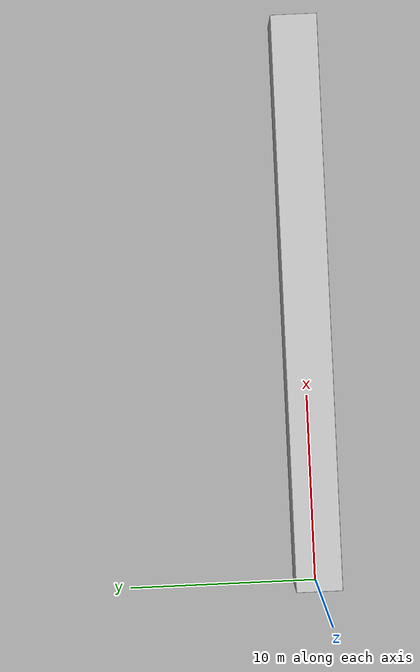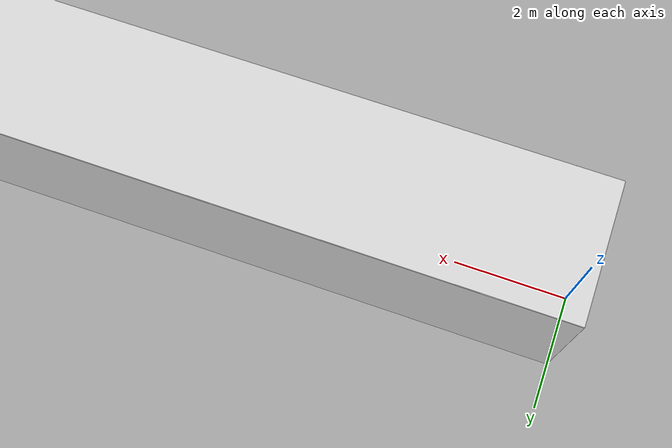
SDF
<?xml version="1.0" ?>
<sdf version="1.6">
  <world name="corridor">

    <!-- Deterministic fizik -->
    <physics type="ode">
      <real_time_update_rate>1000</real_time_update_rate>
      <max_step_size>0.001</max_step_size>
      <real_time_factor>1</real_time_factor>
      <ode>
        <solver>
          <type>quick</type>
          <iters>150</iters>
          <precon_iters>0</precon_iters>
          <sor>1.4</sor>
        </solver>
        <constraints>
          <cfm>1e-5</cfm>
          <erp>0.2</erp>
          <contact_max_correcting_vel>2000</contact_max_correcting_vel>
          <contact_surface_layer>0.01</contact_surface_layer>
        </constraints>
      </ode>
    </physics>

    <!-- Yerçekimi -->
    <gravity>0 0 -9.81</gravity>

    <!-- Arka plan rengi (gri ton) -->
    <scene>
      <ambient>0.35 0.35 0.35 1</ambient>
      <background>0.4 0.4 0.4 1</background>
      <shadows>false</shadows>
      <sky>
        <clouds>
          <speed>0</speed>
        </clouds>
      </sky>
    </scene>

    <!-- GUI kamera -->
    <gui fullscreen="0">
      <camera name="user_camera">
        <!-- Koridor girişinde, göz hizasında, içeri bakıyor -->
        <pose>-1 0 1.6 0 0.05 0</pose>
        <view_controller>orbit</view_controller>
      </camera>
    </gui>

    <!-- ===================== KORIDOR GEOMETRİSİ ===================== -->
    <!-- 30m uzun (+x), 2.4m geniş (y), 2.8m yüksek (z) -->
    <!-- Merkez: x=15, y=0, z=1.4 -->

    <!-- ZEMİN -->
    <model name="floor">
      <static>true</static>
      <pose>15 0 0 0 0 0</pose>
      <link name="link">
        <collision name="col">
          <geometry><box><size>30 2.4 0.02</size></box></geometry>
        </collision>
        <visual name="vis">
          <geometry><box><size>30 2.4 0.02</size></box></geometry>
          <material>
            <ambient>0.45 0.45 0.45 1</ambient>
            <diffuse>0.45 0.45 0.45 1</diffuse>
            <specular>0.05 0.05 0.05 1</specular>
          </material>
        </visual>
      </link>
    </model>

    <!-- TAVAN -->
    <model name="ceiling">
      <static>true</static>
      <pose>15 0 2.8 0 0 0</pose>
      <link name="link">
        <collision name="col">
          <geometry><box><size>30 2.4 0.02</size></box></geometry>
        </collision>
        <visual name="vis">
          <geometry><box><size>30 2.4 0.02</size></box></geometry>
          <material>
            <ambient>0.85 0.85 0.85 1</ambient>
            <diffuse>0.85 0.85 0.85 1</diffuse>
          </material>
        </visual>
      </link>
    </model>

    <!-- SOL DUVAR (y = +1.2) -->
    <model name="wall_left">
      <static>true</static>
      <pose>15 1.2 1.4 0 0 0</pose>
      <link name="link">
        <collision name="col">
          <geometry><box><size>30 0.02 2.8</size></box></geometry>
        </collision>
        <visual name="vis">
          <geometry><box><size>30 0.02 2.8</size></box></geometry>
          <material>
            <ambient>0.80 0.80 0.80 1</ambient>
            <diffuse>0.80 0.80 0.80 1</diffuse>
          </material>
        </visual>
      </link>
    </model>

    <!-- SAĞ DUVAR (y = -1.2) -->
    <model name="wall_right">
      <static>true</static>
      <pose>15 -1.2 1.4 0 0 0</pose>
      <link name="link">
        <collision name="col">
          <geometry><box><size>30 0.02 2.8</size></box></geometry>
        </collision>
        <visual name="vis">
          <geometry><box><size>30 0.02 2.8</size></box></geometry>
          <material>
            <ambient>0.80 0.80 0.80 1</ambient>
            <diffuse>0.80 0.80 0.80 1</diffuse>
          </material>
        </visual>
      </link>
    </model>

    <!-- ARKA DUVAR (x = 0) -->
    <model name="wall_back">
      <static>true</static>
      <pose>0 0 1.4 0 0 0</pose>
      <link name="link">
        <collision name="col">
          <geometry><box><size>0.02 2.4 2.8</size></box></geometry>
        </collision>
        <visual name="vis">
          <geometry><box><size>0.02 2.4 2.8</size></box></geometry>
          <material>
            <ambient>0.80 0.80 0.80 1</ambient>
            <diffuse>0.80 0.80 0.80 1</diffuse>
          </material>
        </visual>
      </link>
    </model>

    <!-- ÖN DUVAR (x = 30) -->
    <model name="wall_front">
      <static>true</static>
      <pose>30 0 1.4 0 0 0</pose>
      <link name="link">
        <collision name="col">
          <geometry><box><size>0.02 2.4 2.8</size></box></geometry>
        </collision>
        <visual name="vis">
          <geometry><box><size>0.02 2.4 2.8</size></box></geometry>
          <material>
            <ambient>0.80 0.80 0.80 1</ambient>
            <diffuse>0.80 0.80 0.80 1</diffuse>
          </material>
        </visual>
      </link>
    </model>

    <!-- ===================== TAVAN IŞIKLARI ===================== -->
    <!-- 6 adet, x = 2.5, 7.5, 12.5, 17.5, 22.5, 27.5 -->

    <light name="ceiling_light_1" type="point">
      <pose>2.5 0 2.7 0 0 0</pose>
      <diffuse>0.65 0.65 0.65 1</diffuse>
      <specular>0.05 0.05 0.05 1</specular>
      <attenuation>
        <range>7</range>
        <constant>0.8</constant>
        <linear>0.1</linear>
        <quadratic>0.005</quadratic>
      </attenuation>
      <cast_shadows>false</cast_shadows>
    </light>

    <light name="ceiling_light_2" type="point">
      <pose>7.5 0 2.7 0 0 0</pose>
      <diffuse>0.65 0.65 0.65 1</diffuse>
      <specular>0.05 0.05 0.05 1</specular>
      <attenuation>
        <range>7</range>
        <constant>0.8</constant>
        <linear>0.1</linear>
        <quadratic>0.005</quadratic>
      </attenuation>
      <cast_shadows>false</cast_shadows>
    </light>

    <light name="ceiling_light_3" type="point">
      <pose>12.5 0 2.7 0 0 0</pose>
      <diffuse>0.65 0.65 0.65 1</diffuse>
      <specular>0.05 0.05 0.05 1</specular>
      <attenuation>
        <range>7</range>
        <constant>0.8</constant>
        <linear>0.1</linear>
        <quadratic>0.005</quadratic>
      </attenuation>
      <cast_shadows>false</cast_shadows>
    </light>

    <light name="ceiling_light_4" type="point">
      <pose>17.5 0 2.7 0 0 0</pose>
      <diffuse>0.65 0.65 0.65 1</diffuse>
      <specular>0.05 0.05 0.05 1</specular>
      <attenuation>
        <range>7</range>
        <constant>0.8</constant>
        <linear>0.1</linear>
        <quadratic>0.005</quadratic>
      </attenuation>
      <cast_shadows>false</cast_shadows>
    </light>

    <light name="ceiling_light_5" type="point">
      <pose>22.5 0 2.7 0 0 0</pose>
      <diffuse>0.65 0.65 0.65 1</diffuse>
      <specular>0.05 0.05 0.05 1</specular>
      <attenuation>
        <range>7</range>
        <constant>0.8</constant>
        <linear>0.1</linear>
        <quadratic>0.005</quadratic>
      </attenuation>
      <cast_shadows>false</cast_shadows>
    </light>

    <light name="ceiling_light_6" type="point">
      <pose>27.5 0 2.7 0 0 0</pose>
      <diffuse>0.65 0.65 0.65 1</diffuse>
      <specular>0.05 0.05 0.05 1</specular>
      <attenuation>
        <range>7</range>
        <constant>0.8</constant>
        <linear>0.1</linear>
        <quadratic>0.005</quadratic>
      </attenuation>
      <cast_shadows>false</cast_shadows>
    </light>

    <!-- ===================== ÜÇÜNCÜ ŞAHIS GENEL BAKIŞ KAMERASI ===================== -->
    <!-- Koridorun solunda üst köşe; +x yönüne bakıyor, biraz aşağı eğilmiş.
         pitch=+0.3 → +x ve biraz -z (zemine doğru).
         yaw=-0.25 → hafifçe sağa (koridor merkezi y=0'a doğru). -->
    <model name="overview_camera_model">
      <static>true</static>
      <pose>5 1.1 2.5 0 0.3 -0.25</pose>
      <link name="link">
        <sensor name="overview_cam" type="camera">
          <always_on>true</always_on>
          <update_rate>30</update_rate>
          <camera>
            <horizontal_fov>1.7453</horizontal_fov>
            <image>
              <width>1280</width>
              <height>720</height>
              <format>R8G8B8</format>
            </image>
            <clip>
              <near>0.1</near>
              <far>40</far>
            </clip>
          </camera>
          <plugin name="overview_cam_plugin" filename="libgazebo_ros_camera.so">
            <ros>
              <namespace></namespace>
            </ros>
            <camera_name>overview_cam</camera_name>
            <frame_name>overview_cam_frame</frame_name>
          </plugin>
        </sensor>
      </link>
    </model>

  </world>
</sdf>
